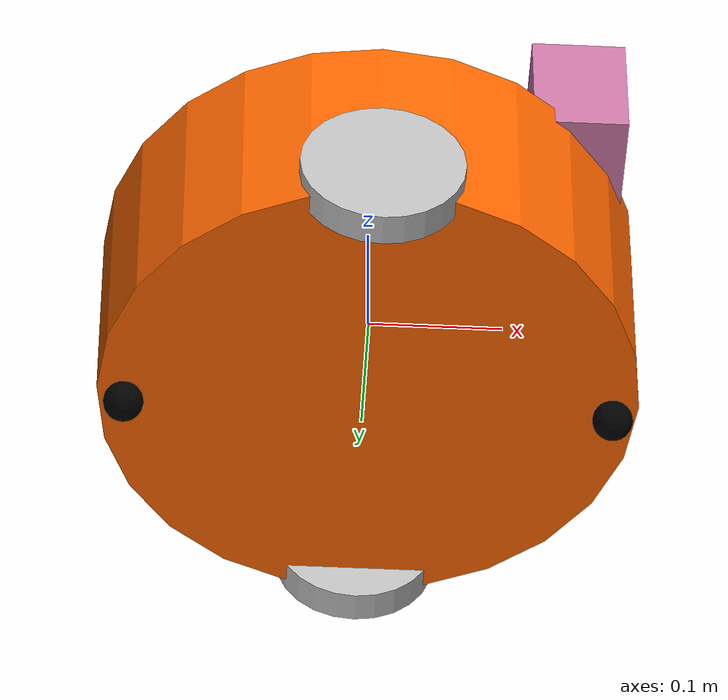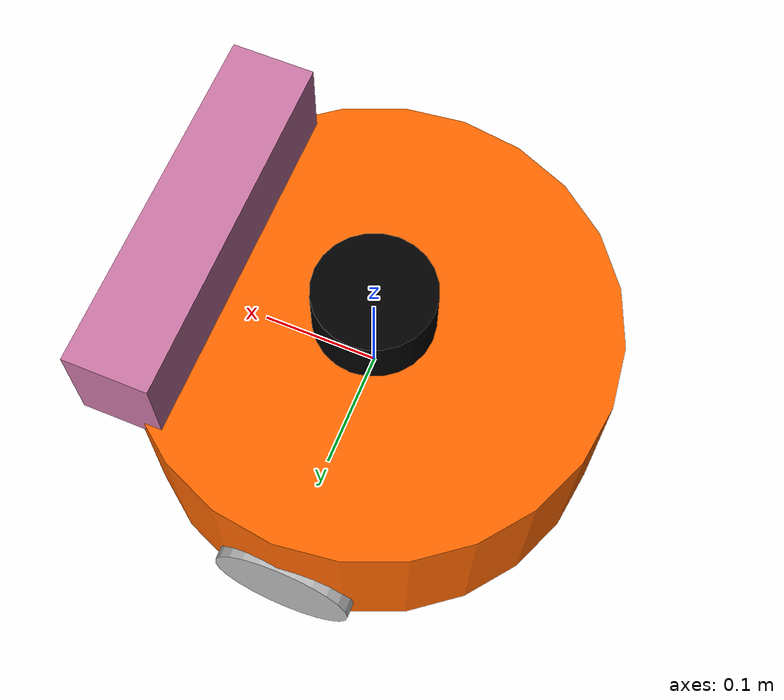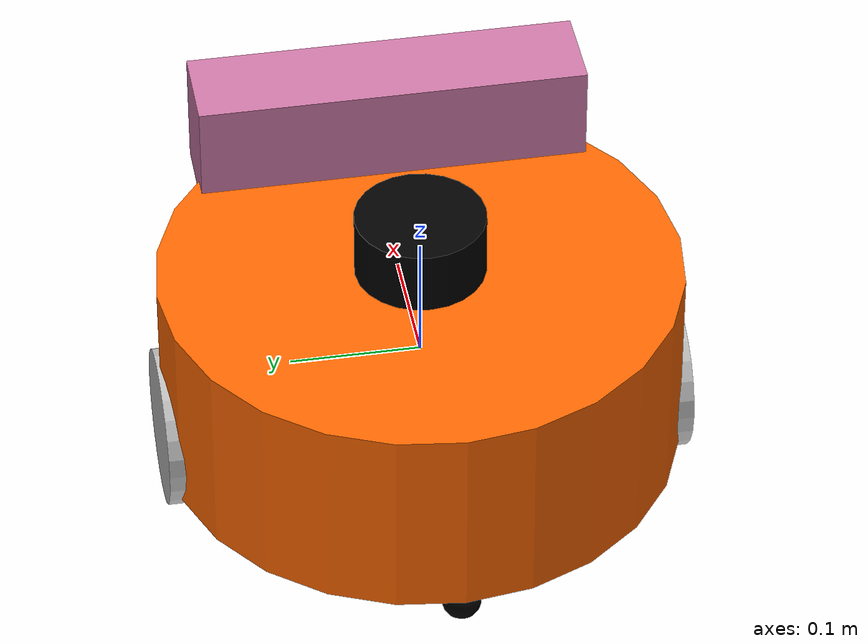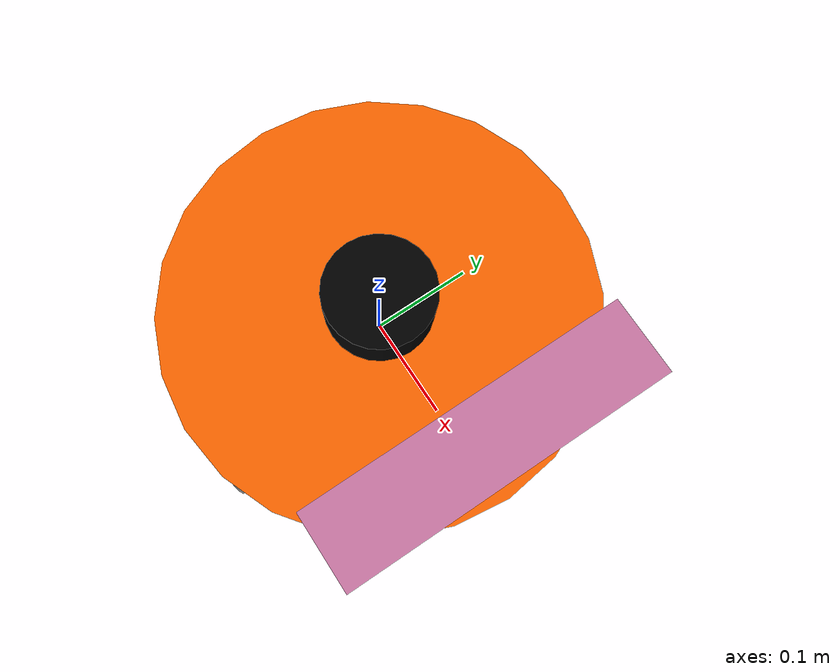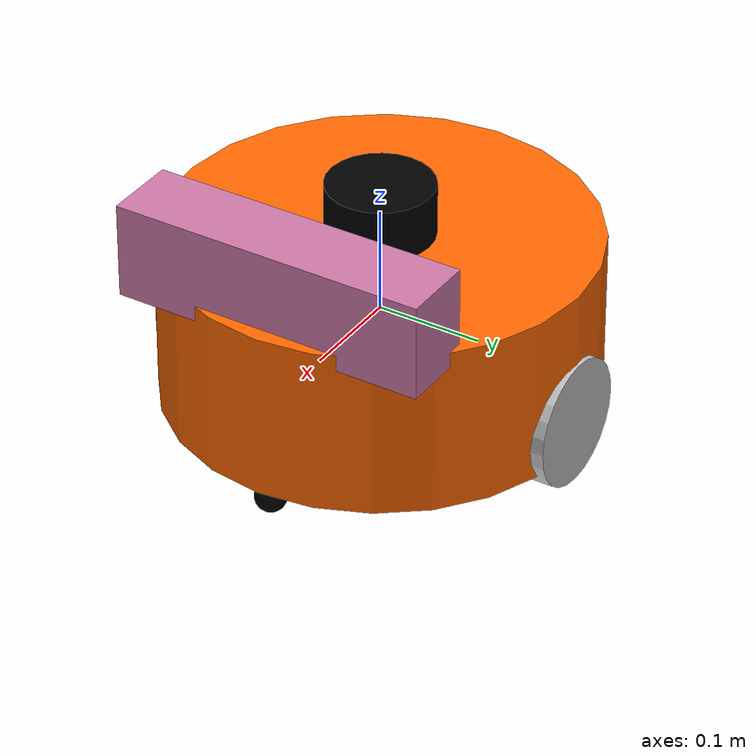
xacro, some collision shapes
<?xml version="1.0"?>
<robot name="mbot" xmlns:xacro="http://www.ros.org/wiki/xacro">

    <xacro:include filename="$(find mbot_description)/urdf/mbot_base.urdf.xacro"/>
    <xacro:include filename="$(find mbot_description)/urdf/sensors/camera.urdf.xacro"/>
    <xacro:include filename="$(find mbot_description)/urdf/sensors/kinect.urdf.xacro"/>
    <xacro:include filename="$(find mbot_description)/urdf/sensors/lidar.urdf.xacro"/>

    <xacro:usb_camera prefix = "camera"/>

    <xacro:property name="camera_offset_x" value="0.17" />
    <xacro:property name="camera_offset_y" value="0" />
    <xacro:property name="camera_offset_z" value="0.10" />

    <!-- Camera -->
    <joint name="camera_joint" type="fixed">
        <origin xyz="${camera_offset_x} ${camera_offset_y} ${camera_offset_z}" rpy="0 0 0" />
        <parent link="base_link"/>
        <child link="camera_link"/>
    </joint>

    <xacro:property name="kinect_offset_x" value="0.15" />
    <xacro:property name="kinect_offset_y" value="0" />
    <xacro:property name="kinect_offset_z" value="0.11" />

    <!-- kinect -->
    <joint name="kinect_joint" type="fixed">
        <origin xyz="${kinect_offset_x} ${kinect_offset_y} ${kinect_offset_z}" rpy="0 0 0" />
        <parent link="base_link"/>
        <child link="kinect_link"/>
    </joint>

    <xacro:kinect_camera prefix="kinect"/>

    <xacro:property name="lidar_offset_x" value="0" />
    <xacro:property name="lidar_offset_y" value="0" />
    <xacro:property name="lidar_offset_z" value="0.105" />

    <!-- lidar -->
    <joint name="lidar_joint" type="fixed">
        <origin xyz="${lidar_offset_x} ${lidar_offset_y} ${lidar_offset_z}" rpy="0 0 0" />
        <parent link="base_link"/>
        <child link="laser_link"/>
    </joint>

    <xacro:rplidar prefix="laser"/>

</robot>

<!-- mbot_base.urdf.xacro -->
<robot name="mbot" xmlns:xacro="http://www.ros.org/wiki/xacro">

    <!-- Property List -->
    <xacro:property name="M_PI" value="3.1415926"/>
    <xacro:property name="base_radius" value="0.20"/>
    <xacro:property name="base_length" value="0.16"/>

    <xacro:property name="wheel_radius" value="0.06"/>
    <xacro:property name="wheel_length" value="0.025"/>
    <xacro:property name="wheel_joint_y" value="0.19"/>
    <xacro:property name="wheel_joint_z" value="0.05"/>

    <xacro:property name="caster_radius"  value="0.015"/> <!-- wheel_radius - ( base_length/2 - wheel_joint_z) -->
    <xacro:property name="caster_joint_x" value="0.18"/>

    <!-- Defining the colors used in this robot -->
    <material name="orange_red">
        <color rgba="1 0.4 0 1"/>
    </material>
    <material name="black">
        <color rgba="0 0 0 0.95"/>
    </material>
    <material name="gray">
        <color rgba="0.75 0.75 0.75 1"/>
    </material>
    <material name ="dark_gray">
        <color rgba="0.2 0.2 0.2 1"/>
    </material>

    <!-- Macro for robot wheel -->
    <xacro:macro name="wheel" params="prefix reflect">
        <joint name="${prefix}_wheel_joint" type="continuous">
            <origin xyz="0 ${reflect*wheel_joint_y} ${-wheel_joint_z}" rpy="0 0 0"/>
            <parent link="base_link"/>
            <child link="${prefix}_wheel_link"/>
            <axis xyz="0 1 0"/>
        </joint>

        <link name="${prefix}_wheel_link">
            <visual>
                <origin xyz="0 0 0" rpy="${M_PI/2} 0 0" />
                <geometry>
                    <cylinder radius="${wheel_radius}" length = "${wheel_length}"/>
                </geometry>
                <material name="gray" />
            </visual>
        </link>
    </xacro:macro>

    <!-- Macro for robot caster -->
    <xacro:macro name="caster" params="prefix reflect">
        <joint name="${prefix}_caster_joint" type="continuous">
            <origin xyz="${reflect*caster_joint_x} 0 ${-(base_length/2 + caster_radius)}" rpy="0 0 0"/>
            <parent link="base_link"/>
            <child link="${prefix}_caster_link"/>
            <axis xyz="0 1 0"/>
        </joint>

        <link name="${prefix}_caster_link">
            <visual>
                <origin xyz="0 0 0" rpy="0 0 0"/>
                <geometry>
                    <sphere radius="${caster_radius}" />
                </geometry>
                <material name="black" />
            </visual>
        </link>
    </xacro:macro>

	<link name="base_link">
	    <visual>
			<origin xyz="0 0 0" rpy="0 0 0" />
			<geometry>
				<cylinder length="${base_length}" radius="${base_radius}"/>
			</geometry>
			<material name="orange_red" />
	    </visual>
	</link>

	<xacro:wheel prefix="left"  reflect="1"/>
	<xacro:wheel prefix="right" reflect="-1"/>

	<xacro:caster prefix="front" reflect="-1"/>
	<xacro:caster prefix="back"  reflect="1"/>

</robot>

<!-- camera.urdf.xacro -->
<robot xmlns:xacro="http://www.ros.org/wiki/xacro" name="camera">

    <xacro:macro name="usb_camera" params="prefix:=camera">
        <!-- Create laser reference frame -->
        <link name="${prefix}_link">
            <visual>
                <origin xyz=" 0 0 0 " rpy="0 0 0" />
                <geometry>
                    <box size="0.01 0.04 0.04" />
                </geometry>
                <material name="black"/>
            </visual>
        </link>
    </xacro:macro>
</robot>

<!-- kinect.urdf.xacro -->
<robot xmlns:xacro="http://www.ros.org/wiki/xacro" name="kinect_camera">

    <xacro:macro name="kinect_camera" params="prefix:=camera">
        <!-- Create kinect reference frame -->
        <!-- Add mesh for kinect -->
        <link name="${prefix}_link">
            <origin xyz="0 0 0" rpy="0 0 0"/>
            <visual>
                <origin xyz="0 0 0" rpy="0 0 ${M_PI/2}"/>
                <geometry>
                    <mesh filename="package://mbot_description/meshes/kinect.dae" />
                </geometry>
            </visual>
            <collision>
                <geometry>
                    <box size="0.07 0.3 0.09"/>
                </geometry>
            </collision>
        </link>

        <joint name="${prefix}_optical_joint" type="fixed">
            <origin xyz="0 0 0" rpy="-1.5708 0 -1.5708"/>
            <parent link="${prefix}_link"/>
            <child link="${prefix}_frame_optical"/>
        </joint>

        <link name="${prefix}_frame_optical"/>

    </xacro:macro>
</robot>

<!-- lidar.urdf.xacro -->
<robot xmlns:xacro="http://www.ros.org/wiki/xacro" name="laser">

    <xacro:macro name="rplidar" params="prefix:=laser">
        <!-- Create laser reference frame -->
        <link name="${prefix}_link">

            <visual>
                <origin xyz=" 0 0 0 " rpy="0 0 0" />
                <geometry>
                    <cylinder length="0.05" radius="0.05"/>
                </geometry>
                <material name="black"/>
            </visual>
        </link>

    </xacro:macro>
</robot>
